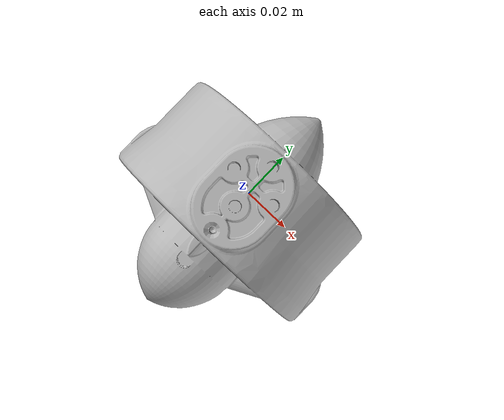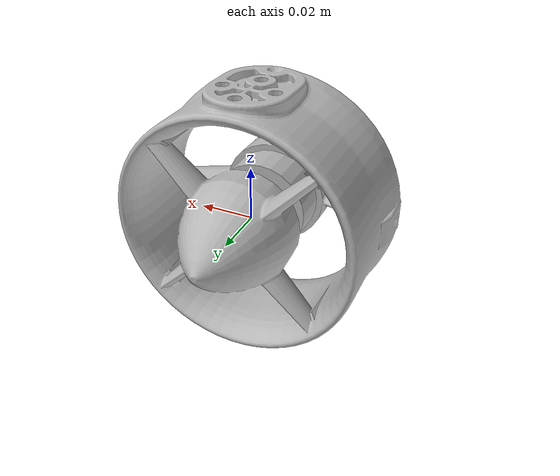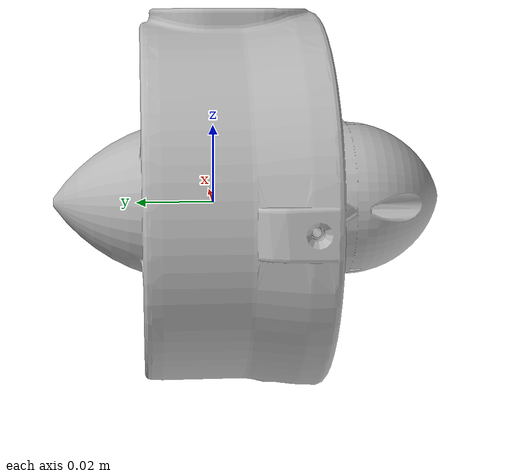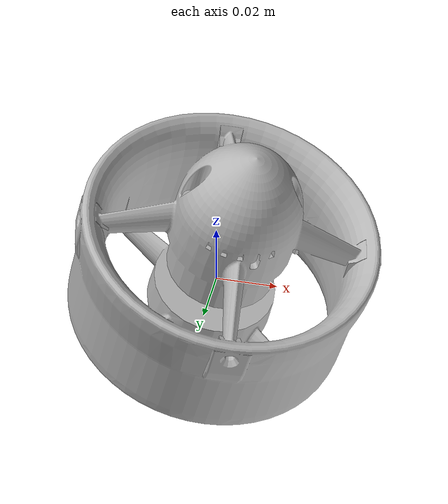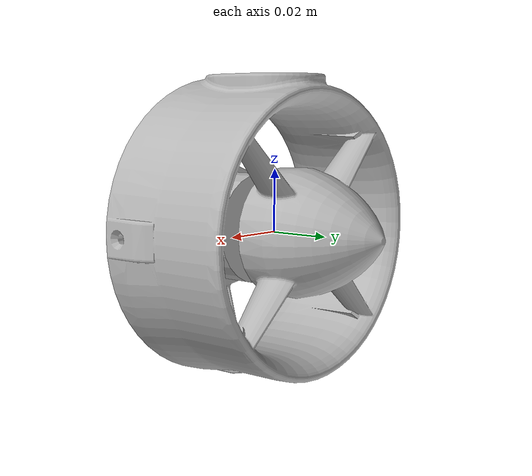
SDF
<?xml version='1.0'?>
<sdf version='1.7'>
  <model name='T100-THRUSTER-SHELL'>
    <link name='T100-THRUSTER-SHELL'>
      <inertial>
        <pose>-1e-05 -0.004079 0.000532 0 -0 0</pose>
        <mass>0.16979</mass>
        <inertia>
          <ixx>0.00015509</ixx>
          <ixy>2.851e-08</ixy>
          <ixz>-1.8979e-09</ixz>
          <iyy>0.00017378</iyy>
          <iyz>7.7336e-07</iyz>
          <izz>0.00015085</izz>
        </inertia>
      </inertial>
      <collision name='T100-THRUSTER-SHELL_collision'>
        <pose>-1e-05 -0.004079 0.000532 1.5708 -0 0</pose>
        <geometry>
          <mesh>
            <scale>1 1 1</scale>
            <uri>model://T100-THRUSTER-SHELL/meshes/T100-THRUSTER-SHELL.dae</uri>
          </mesh>
        </geometry>
      </collision>
      <visual name='T100-THRUSTER-SHELL_visual'>
        <pose>-1e-05 -0.004079 0.000532 1.5708 -0 0</pose>
        <geometry>
          <mesh>
            <scale>1 1 1</scale>
            <uri>model://T100-THRUSTER-SHELL/meshes/T100-THRUSTER-SHELL.dae</uri>
          </mesh>
        </geometry>
      </visual>
    </link>
  </model>
</sdf>
